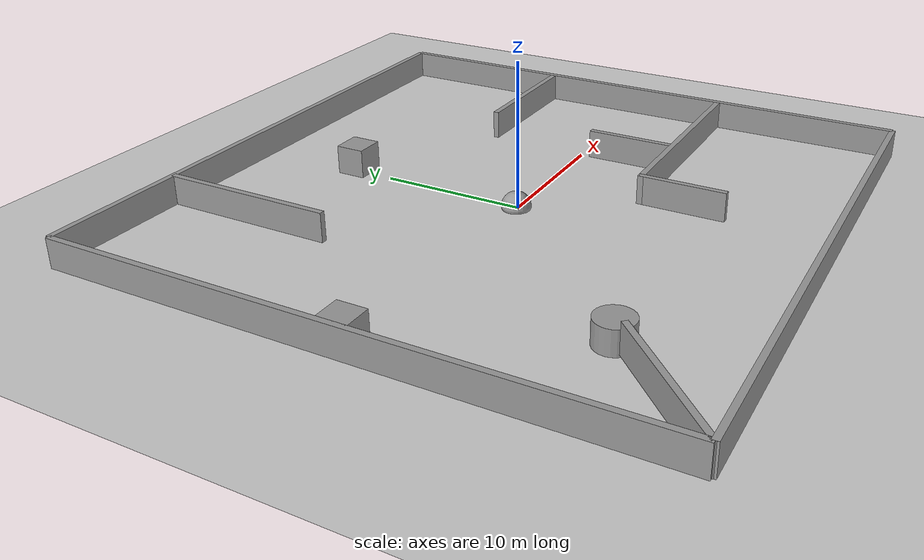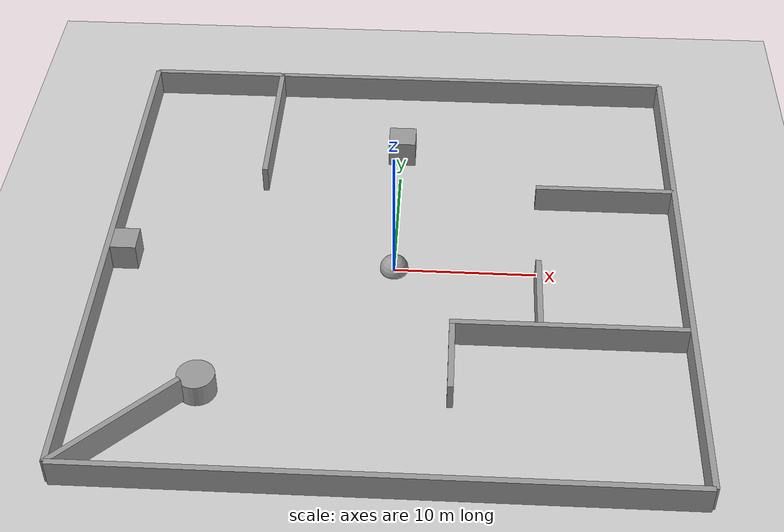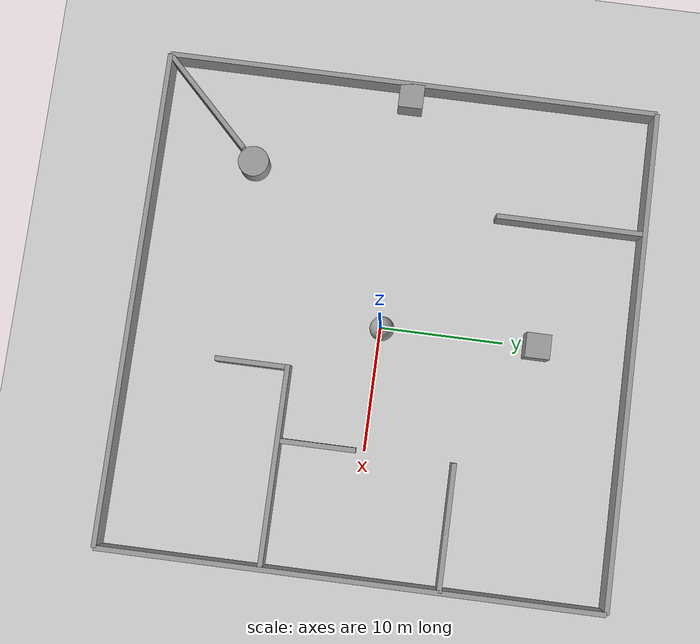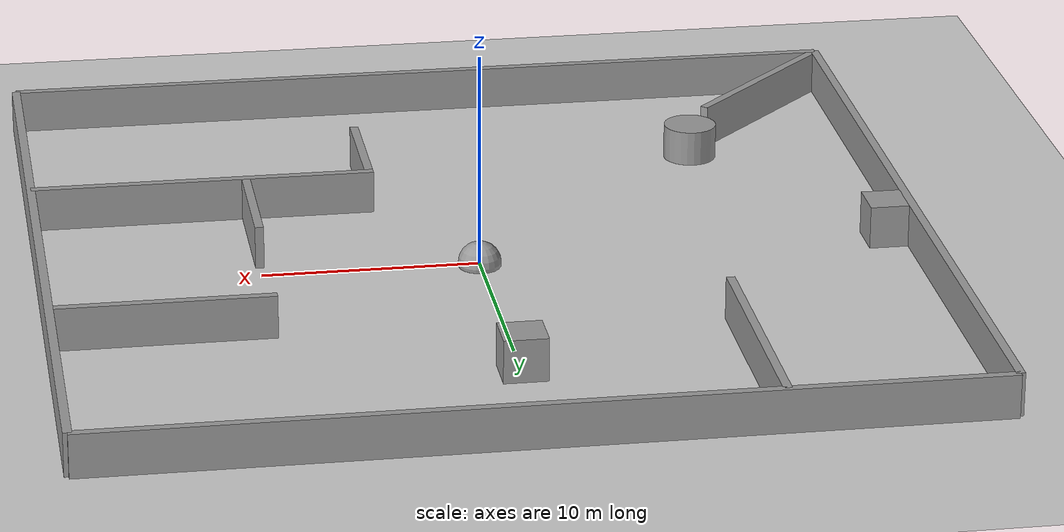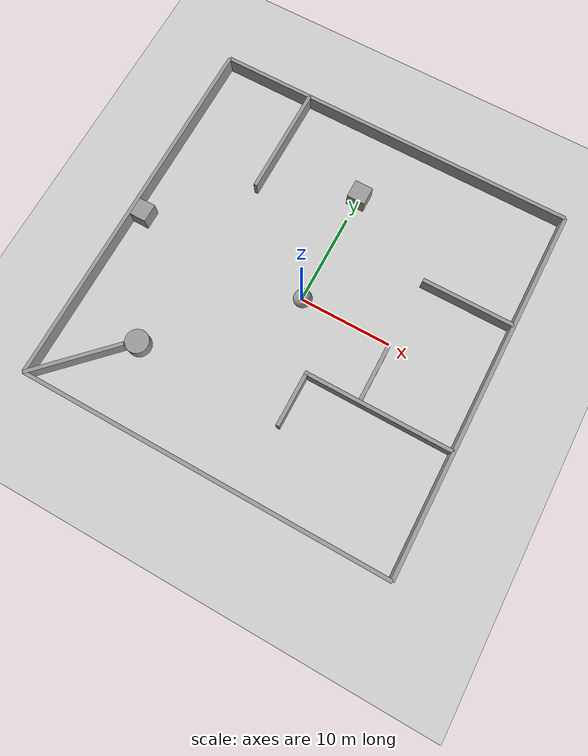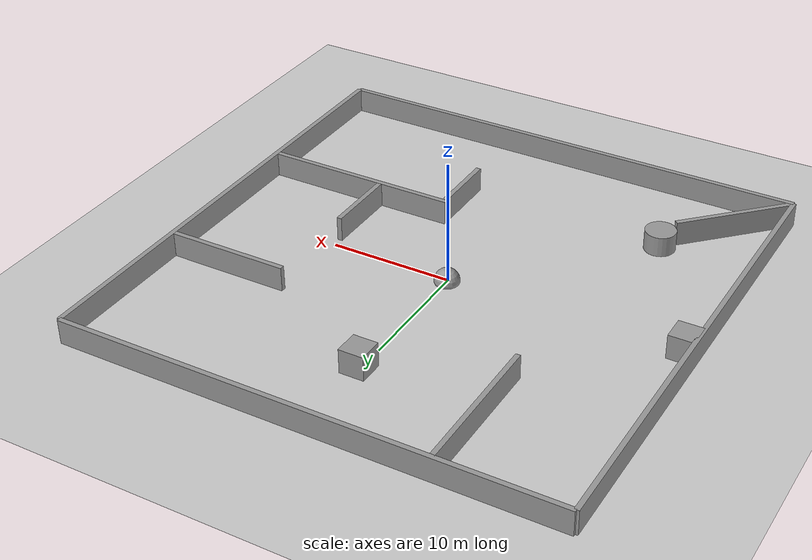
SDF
<sdf version="1.6">
 <world name="default">
  <light name="sun" type="directional">
   <pose>0 0 10 0 -0 0</pose>
   <diffuse>0.8 0.8 0.8 1</diffuse>
   <specular>0.2 0.2 0.2 1</specular>
   <attenuation>
    <range>1000</range>
    <constant>0.9</constant>
    <linear>0.01</linear>
    <quadratic>0.001</quadratic>
   </attenuation>
   <direction>-0.5 0.1 -0.9</direction>
  </light>
  <model name="ground_plane">
   <static>1</static>
   <link name="link">
    <collision name="collision">
     <geometry><plane><normal>0 0 1</normal><size>100 100</size></plane></geometry>
     <surface>
      <contact><collide_bitmask>65535</collide_bitmask></contact>
      <friction><ode><mu>100</mu><mu2>50</mu2></ode></friction>
     </surface>
    </collision>
    <visual name="visual">
     <cast_shadows>0</cast_shadows>
     <geometry><plane><normal>0 0 1</normal><size>100 100</size></plane></geometry>
     <material>
      <script><uri>file://media/materials/scripts/gazebo.material</uri><name>Gazebo/Grey</name></script>
     </material>
    </visual>
   </link>
  </model>
  <gravity>0 0 -9.8</gravity>
  <magnetic_field>6e-06 2.3e-05 -4.2e-05</magnetic_field>
  <atmosphere type="adiabatic"/>
  <physics name="default_physics" default="0" type="ode">
   <max_step_size>0.001</max_step_size>
   <real_time_factor>1</real_time_factor>
   <real_time_update_rate>1000</real_time_update_rate>
  </physics>
  <scene><ambient>0.4 0.4 0.4 1</ambient><background>0.7 0.7 0.7 1</background><shadows>1</shadows></scene>
  <spherical_coordinates>
   <surface_model>EARTH_WGS84</surface_model>
   <latitude_deg>0</latitude_deg>
   <longitude_deg>0</longitude_deg>
   <elevation>0</elevation>
   <heading_deg>0</heading_deg>
  </spherical_coordinates>
  <model name="small_environment">
   <static>1</static>
   <link name="link_0">
    <inertial>
     <mass>1</mass>
     <inertia>
      <ixx>0.166667</ixx>
      <ixy>0</ixy>
      <ixz>0</ixz>
      <iyy>0.166667</iyy>
      <iyz>0</iyz>
      <izz>0.166667</izz>
     </inertia>
    </inertial>
    <pose>2.46233 -20.6604 1.10714 0 -0 0</pose>
    <visual name="visual">
     <geometry><box><size>40 0.4 2</size></box></geometry>
     <material>
      <lighting>1</lighting>
      <script><uri>file://media/materials/scripts/gazebo.material</uri><name>Gazebo/Grey</name></script>
      <shader type="pixel"><normal_map>__default__</normal_map></shader>
      <ambient>0.3 0.3 0.3 1</ambient>
      <diffuse>0.7 0.7 0.7 1</diffuse>
      <specular>0.01 0.01 0.01 1</specular>
      <emissive>0 0 0 1</emissive>
     </material>
    </visual>
    <collision name="collision">
     <geometry><box><size>40 0.4 2</size></box></geometry>
     <surface>
      <friction>
       <ode><mu>1</mu><mu2>1</mu2><fdir1>0 0 0</fdir1><slip1>0</slip1><slip2>0</slip2></ode>
       <torsional>
        <coefficient>1</coefficient>
        <patch_radius>0</patch_radius>
        <surface_radius>0</surface_radius>
        <use_patch_radius>1</use_patch_radius>
        <ode><slip>0</slip></ode>
       </torsional>
      </friction>
      <bounce><restitution_coefficient>0</restitution_coefficient><threshold>1e+06</threshold></bounce>
      <contact>
       <collide_without_contact>0</collide_without_contact>
       <collide_without_contact_bitmask>1</collide_without_contact_bitmask>
       <collide_bitmask>1</collide_bitmask>
       <ode>
        <soft_cfm>0</soft_cfm>
        <soft_erp>0.2</soft_erp>
        <kp>1e+13</kp>
        <kd>1</kd>
        <max_vel>0.01</max_vel>
        <min_depth>0</min_depth>
       </ode>
       <bullet>
        <split_impulse>1</split_impulse>
        <split_impulse_penetration_threshold>-0.01</split_impulse_penetration_threshold>
        <soft_cfm>0</soft_cfm>
        <soft_erp>0.2</soft_erp>
        <kp>1e+13</kp>
        <kd>1</kd>
       </bullet>
      </contact>
     </surface>
    </collision>
   </link>
   <link name="link_0_clone">
    <inertial>
     <mass>1</mass>
     <inertia>
      <ixx>0.166667</ixx>
      <ixy>0</ixy>
      <ixz>0</ixz>
      <iyy>0.166667</iyy>
      <iyz>0</iyz>
      <izz>0.166667</izz>
     </inertia>
    </inertial>
    <pose>2.46233 19.3396 1.10714 0 -0 0</pose>
    <visual name="visual">
     <geometry><box><size>40 0.4 2</size></box></geometry>
     <material>
      <lighting>1</lighting>
      <script><uri>file://media/materials/scripts/gazebo.material</uri><name>Gazebo/Grey</name></script>
      <shader type="pixel"><normal_map>__default__</normal_map></shader>
      <ambient>0.3 0.3 0.3 1</ambient>
      <diffuse>0.7 0.7 0.7 1</diffuse>
      <specular>0.01 0.01 0.01 1</specular>
      <emissive>0 0 0 1</emissive>
     </material>
    </visual>
    <collision name="collision">
     <geometry><box><size>40 0.4 2</size></box></geometry>
     <surface>
      <friction>
       <ode><mu>1</mu><mu2>1</mu2><fdir1>0 0 0</fdir1><slip1>0</slip1><slip2>0</slip2></ode>
       <torsional>
        <coefficient>1</coefficient>
        <patch_radius>0</patch_radius>
        <surface_radius>0</surface_radius>
        <use_patch_radius>1</use_patch_radius>
        <ode><slip>0</slip></ode>
       </torsional>
      </friction>
      <bounce><restitution_coefficient>0</restitution_coefficient><threshold>1e+06</threshold></bounce>
      <contact>
       <collide_without_contact>0</collide_without_contact>
       <collide_without_contact_bitmask>1</collide_without_contact_bitmask>
       <collide_bitmask>1</collide_bitmask>
       <ode>
        <soft_cfm>0</soft_cfm>
        <soft_erp>0.2</soft_erp>
        <kp>1e+13</kp>
        <kd>1</kd>
        <max_vel>0.01</max_vel>
        <min_depth>0</min_depth>
       </ode>
       <bullet>
        <split_impulse>1</split_impulse>
        <split_impulse_penetration_threshold>-0.01</split_impulse_penetration_threshold>
        <soft_cfm>0</soft_cfm>
        <soft_erp>0.2</soft_erp>
        <kp>1e+13</kp>
        <kd>1</kd>
       </bullet>
      </contact>
     </surface>
    </collision>
   </link>
   <link name="link_0_clone_0">
    <inertial>
     <mass>1</mass>
     <inertia>
      <ixx>0.166667</ixx>
      <ixy>0</ixy>
      <ixz>0</ixz>
      <iyy>0.166667</iyy>
      <iyz>0</iyz>
      <izz>0.166667</izz>
     </inertia>
    </inertial>
    <pose>-17.5377 -0.660375 1.10714 0 -0 0</pose>
    <visual name="visual">
     <geometry><box><size>0.4 40 2</size></box></geometry>
     <material>
      <lighting>1</lighting>
      <script><uri>file://media/materials/scripts/gazebo.material</uri><name>Gazebo/Grey</name></script>
      <shader type="pixel"><normal_map>__default__</normal_map></shader>
      <ambient>0.3 0.3 0.3 1</ambient>
      <diffuse>0.7 0.7 0.7 1</diffuse>
      <specular>0.01 0.01 0.01 1</specular>
      <emissive>0 0 0 1</emissive>
     </material>
    </visual>
    <collision name="collision">
     <geometry><box><size>0.4 40 2</size></box></geometry>
     <surface>
      <friction>
       <ode><mu>1</mu><mu2>1</mu2><fdir1>0 0 0</fdir1><slip1>0</slip1><slip2>0</slip2></ode>
       <torsional>
        <coefficient>1</coefficient>
        <patch_radius>0</patch_radius>
        <surface_radius>0</surface_radius>
        <use_patch_radius>1</use_patch_radius>
        <ode><slip>0</slip></ode>
       </torsional>
      </friction>
      <bounce><restitution_coefficient>0</restitution_coefficient><threshold>1e+06</threshold></bounce>
      <contact>
       <collide_without_contact>0</collide_without_contact>
       <collide_without_contact_bitmask>1</collide_without_contact_bitmask>
       <collide_bitmask>1</collide_bitmask>
       <ode>
        <soft_cfm>0</soft_cfm>
        <soft_erp>0.2</soft_erp>
        <kp>1e+13</kp>
        <kd>1</kd>
        <max_vel>0.01</max_vel>
        <min_depth>0</min_depth>
       </ode>
       <bullet>
        <split_impulse>1</split_impulse>
        <split_impulse_penetration_threshold>-0.01</split_impulse_penetration_threshold>
        <soft_cfm>0</soft_cfm>
        <soft_erp>0.2</soft_erp>
        <kp>1e+13</kp>
        <kd>1</kd>
       </bullet>
      </contact>
     </surface>
    </collision>
   </link>
   <link name="link_0_clone_0_clone">
    <inertial>
     <mass>1</mass>
     <inertia>
      <ixx>0.166667</ixx>
      <ixy>0</ixy>
      <ixz>0</ixz>
      <iyy>0.166667</iyy>
      <iyz>0</iyz>
      <izz>0.166667</izz>
     </inertia>
    </inertial>
    <pose>22.4623 -0.660375 1.10714 0 -0 0</pose>
    <visual name="visual">
     <geometry><box><size>0.4 40 2</size></box></geometry>
     <material>
      <lighting>1</lighting>
      <script><uri>file://media/materials/scripts/gazebo.material</uri><name>Gazebo/Grey</name></script>
      <shader type="pixel"><normal_map>__default__</normal_map></shader>
      <ambient>0.3 0.3 0.3 1</ambient>
      <diffuse>0.7 0.7 0.7 1</diffuse>
      <specular>0.01 0.01 0.01 1</specular>
      <emissive>0 0 0 1</emissive>
     </material>
    </visual>
    <collision name="collision">
     <geometry><box><size>0.4 40 2</size></box></geometry>
     <surface>
      <friction>
       <ode><mu>1</mu><mu2>1</mu2><fdir1>0 0 0</fdir1><slip1>0</slip1><slip2>0</slip2></ode>
       <torsional>
        <coefficient>1</coefficient>
        <patch_radius>0</patch_radius>
        <surface_radius>0</surface_radius>
        <use_patch_radius>1</use_patch_radius>
        <ode><slip>0</slip></ode>
       </torsional>
      </friction>
      <bounce><restitution_coefficient>0</restitution_coefficient><threshold>1e+06</threshold></bounce>
      <contact>
       <collide_without_contact>0</collide_without_contact>
       <collide_without_contact_bitmask>1</collide_without_contact_bitmask>
       <collide_bitmask>1</collide_bitmask>
       <ode>
        <soft_cfm>0</soft_cfm>
        <soft_erp>0.2</soft_erp>
        <kp>1e+13</kp>
        <kd>1</kd>
        <max_vel>0.01</max_vel>
        <min_depth>0</min_depth>
       </ode>
       <bullet>
        <split_impulse>1</split_impulse>
        <split_impulse_penetration_threshold>-0.01</split_impulse_penetration_threshold>
        <soft_cfm>0</soft_cfm>
        <soft_erp>0.2</soft_erp>
        <kp>1e+13</kp>
        <kd>1</kd>
       </bullet>
      </contact>
     </surface>
    </collision>
   </link>
   <link name="link_0_clone_0_clone_0">
    <inertial>
     <mass>1</mass>
     <inertia>
      <ixx>0.166667</ixx>
      <ixy>0</ixy>
      <ixz>0</ixz>
      <iyy>0.166667</iyy>
      <iyz>0</iyz>
      <izz>0.166667</izz>
     </inertia>
    </inertial>
    <pose>-7.53767 13.3396 1.10714 0 -0 0</pose>
    <visual name="visual">
     <geometry><box><size>0.4 12 2</size></box></geometry>
     <material>
      <lighting>1</lighting>
      <script><uri>file://media/materials/scripts/gazebo.material</uri><name>Gazebo/Grey</name></script>
      <shader type="pixel"><normal_map>__default__</normal_map></shader>
      <ambient>0.3 0.3 0.3 1</ambient>
      <diffuse>0.7 0.7 0.7 1</diffuse>
      <specular>0.01 0.01 0.01 1</specular>
      <emissive>0 0 0 1</emissive>
     </material>
    </visual>
    <collision name="collision">
     <geometry><box><size>0.4 12 2</size></box></geometry>
     <surface>
      <friction>
       <ode><mu>1</mu><mu2>1</mu2><fdir1>0 0 0</fdir1><slip1>0</slip1><slip2>0</slip2></ode>
       <torsional>
        <coefficient>1</coefficient>
        <patch_radius>0</patch_radius>
        <surface_radius>0</surface_radius>
        <use_patch_radius>1</use_patch_radius>
        <ode><slip>0</slip></ode>
       </torsional>
      </friction>
      <bounce><restitution_coefficient>0</restitution_coefficient><threshold>1e+06</threshold></bounce>
      <contact>
       <collide_without_contact>0</collide_without_contact>
       <collide_without_contact_bitmask>1</collide_without_contact_bitmask>
       <collide_bitmask>1</collide_bitmask>
       <ode>
        <soft_cfm>0</soft_cfm>
        <soft_erp>0.2</soft_erp>
        <kp>1e+13</kp>
        <kd>1</kd>
        <max_vel>0.01</max_vel>
        <min_depth>0</min_depth>
       </ode>
       <bullet>
        <split_impulse>1</split_impulse>
        <split_impulse_penetration_threshold>-0.01</split_impulse_penetration_threshold>
        <soft_cfm>0</soft_cfm>
        <soft_erp>0.2</soft_erp>
        <kp>1e+13</kp>
        <kd>1</kd>
       </bullet>
      </contact>
     </surface>
    </collision>
   </link>
   <link name="link_0_clone_0_clone_0_clone_clone">
    <inertial>
     <mass>1</mass>
     <inertia>
      <ixx>0.166667</ixx>
      <ixy>0</ixy>
      <ixz>0</ixz>
      <iyy>0.166667</iyy>
      <iyz>0</iyz>
      <izz>0.166667</izz>
     </inertia>
    </inertial>
    <pose>6.66233 -10.4604 1.10714 0 -0 0</pose>
    <visual name="visual">
     <geometry><box><size>0.4 6 2</size></box></geometry>
     <material>
      <lighting>1</lighting>
      <script><uri>file://media/materials/scripts/gazebo.material</uri><name>Gazebo/Grey</name></script>
      <shader type="pixel"><normal_map>__default__</normal_map></shader>
      <ambient>0.3 0.3 0.3 1</ambient>
      <diffuse>0.7 0.7 0.7 1</diffuse>
      <specular>0.01 0.01 0.01 1</specular>
      <emissive>0 0 0 1</emissive>
     </material>
    </visual>
    <collision name="collision">
     <geometry><box><size>0.4 6 2</size></box></geometry>
     <surface>
      <friction>
       <ode><mu>1</mu><mu2>1</mu2><fdir1>0 0 0</fdir1><slip1>0</slip1><slip2>0</slip2></ode>
       <torsional>
        <coefficient>1</coefficient>
        <patch_radius>0</patch_radius>
        <surface_radius>0</surface_radius>
        <use_patch_radius>1</use_patch_radius>
        <ode><slip>0</slip></ode>
       </torsional>
      </friction>
      <bounce><restitution_coefficient>0</restitution_coefficient><threshold>1e+06</threshold></bounce>
      <contact>
       <collide_without_contact>0</collide_without_contact>
       <collide_without_contact_bitmask>1</collide_without_contact_bitmask>
       <collide_bitmask>1</collide_bitmask>
       <ode>
        <soft_cfm>0</soft_cfm>
        <soft_erp>0.2</soft_erp>
        <kp>1e+13</kp>
        <kd>1</kd>
        <max_vel>0.01</max_vel>
        <min_depth>0</min_depth>
       </ode>
       <bullet>
        <split_impulse>1</split_impulse>
        <split_impulse_penetration_threshold>-0.01</split_impulse_penetration_threshold>
        <soft_cfm>0</soft_cfm>
        <soft_erp>0.2</soft_erp>
        <kp>1e+13</kp>
        <kd>1</kd>
       </bullet>
      </contact>
     </surface>
    </collision>
   </link>
   <link name="link_0_clone_0_clone_0_clone_clone_clone">
    <inertial>
     <mass>1</mass>
     <inertia>
      <ixx>0.166667</ixx>
      <ixy>0</ixy>
      <ixz>0</ixz>
      <iyy>0.166667</iyy>
      <iyz>0</iyz>
      <izz>0.166667</izz>
     </inertia>
    </inertial>
    <pose>12.4623 -4.46037 1.10714 0 -0 0</pose>
    <visual name="visual">
     <geometry><box><size>0.4 6 2</size></box></geometry>
     <material>
      <lighting>1</lighting>
      <script><uri>file://media/materials/scripts/gazebo.material</uri><name>Gazebo/Grey</name></script>
      <shader type="pixel"><normal_map>__default__</normal_map></shader>
      <ambient>0.3 0.3 0.3 1</ambient>
      <diffuse>0.7 0.7 0.7 1</diffuse>
      <specular>0.01 0.01 0.01 1</specular>
      <emissive>0 0 0 1</emissive>
     </material>
    </visual>
    <collision name="collision">
     <geometry><box><size>0.4 6 2</size></box></geometry>
     <surface>
      <friction>
       <ode><mu>1</mu><mu2>1</mu2><fdir1>0 0 0</fdir1><slip1>0</slip1><slip2>0</slip2></ode>
       <torsional>
        <coefficient>1</coefficient>
        <patch_radius>0</patch_radius>
        <surface_radius>0</surface_radius>
        <use_patch_radius>1</use_patch_radius>
        <ode><slip>0</slip></ode>
       </torsional>
      </friction>
      <bounce><restitution_coefficient>0</restitution_coefficient><threshold>1e+06</threshold></bounce>
      <contact>
       <collide_without_contact>0</collide_without_contact>
       <collide_without_contact_bitmask>1</collide_without_contact_bitmask>
       <collide_bitmask>1</collide_bitmask>
       <ode>
        <soft_cfm>0</soft_cfm>
        <soft_erp>0.2</soft_erp>
        <kp>1e+13</kp>
        <kd>1</kd>
        <max_vel>0.01</max_vel>
        <min_depth>0</min_depth>
       </ode>
       <bullet>
        <split_impulse>1</split_impulse>
        <split_impulse_penetration_threshold>-0.01</split_impulse_penetration_threshold>
        <soft_cfm>0</soft_cfm>
        <soft_erp>0.2</soft_erp>
        <kp>1e+13</kp>
        <kd>1</kd>
       </bullet>
      </contact>
     </surface>
    </collision>
   </link>
   <link name="link_0_clone_1">
    <inertial>
     <mass>1</mass>
     <inertia>
      <ixx>0.166667</ixx>
      <ixy>0</ixy>
      <ixz>0</ixz>
      <iyy>0.166667</iyy>
      <iyz>0</iyz>
      <izz>0.166667</izz>
     </inertia>
    </inertial>
    <pose>-14.0377 -17.1604 1.10714 0 -0 0</pose>
    <visual name="visual">
     <pose>0 0 0 0 -0 0.785398</pose>
     <geometry><box><size>10 0.4 2</size></box></geometry>
     <material>
      <lighting>1</lighting>
      <script><uri>file://media/materials/scripts/gazebo.material</uri><name>Gazebo/Grey</name></script>
      <shader type="pixel"><normal_map>__default__</normal_map></shader>
      <ambient>0.3 0.3 0.3 1</ambient>
      <diffuse>0.7 0.7 0.7 1</diffuse>
      <specular>0.01 0.01 0.01 1</specular>
      <emissive>0 0 0 1</emissive>
     </material>
    </visual>
    <collision name="collision">
     <pose>0 0 0 0 -0 0.785398</pose>
     <geometry><box><size>10 0.4 2</size></box></geometry>
     <surface>
      <friction>
       <ode><mu>1</mu><mu2>1</mu2><fdir1>0 0 0</fdir1><slip1>0</slip1><slip2>0</slip2></ode>
       <torsional>
        <coefficient>1</coefficient>
        <patch_radius>0</patch_radius>
        <surface_radius>0</surface_radius>
        <use_patch_radius>1</use_patch_radius>
        <ode><slip>0</slip></ode>
       </torsional>
      </friction>
      <bounce><restitution_coefficient>0</restitution_coefficient><threshold>1e+06</threshold></bounce>
      <contact>
       <collide_without_contact>0</collide_without_contact>
       <collide_without_contact_bitmask>1</collide_without_contact_bitmask>
       <collide_bitmask>1</collide_bitmask>
       <ode>
        <soft_cfm>0</soft_cfm>
        <soft_erp>0.2</soft_erp>
        <kp>1e+13</kp>
        <kd>1</kd>
        <max_vel>0.01</max_vel>
        <min_depth>0</min_depth>
       </ode>
       <bullet>
        <split_impulse>1</split_impulse>
        <split_impulse_penetration_threshold>-0.01</split_impulse_penetration_threshold>
        <soft_cfm>0</soft_cfm>
        <soft_erp>0.2</soft_erp>
        <kp>1e+13</kp>
        <kd>1</kd>
       </bullet>
      </contact>
     </surface>
    </collision>
   </link>
   <link name="link_0_clone_clone">
    <inertial>
     <mass>1</mass>
     <inertia>
      <ixx>0.166667</ixx>
      <ixy>0</ixy>
      <ixz>0</ixz>
      <iyy>0.166667</iyy>
      <iyz>0</iyz>
      <izz>0.166667</izz>
     </inertia>
    </inertial>
    <pose>17.4623 6.33962 1.10714 0 -0 0</pose>
    <visual name="visual">
     <geometry><box><size>10 0.4 2</size></box></geometry>
     <material>
      <lighting>1</lighting>
      <script><uri>file://media/materials/scripts/gazebo.material</uri><name>Gazebo/Grey</name></script>
      <shader type="pixel"><normal_map>__default__</normal_map></shader>
      <ambient>0.3 0.3 0.3 1</ambient>
      <diffuse>0.7 0.7 0.7 1</diffuse>
      <specular>0.01 0.01 0.01 1</specular>
      <emissive>0 0 0 1</emissive>
     </material>
    </visual>
    <collision name="collision">
     <geometry><box><size>10 0.4 2</size></box></geometry>
     <surface>
      <friction>
       <ode><mu>1</mu><mu2>1</mu2><fdir1>0 0 0</fdir1><slip1>0</slip1><slip2>0</slip2></ode>
       <torsional>
        <coefficient>1</coefficient>
        <patch_radius>0</patch_radius>
        <surface_radius>0</surface_radius>
        <use_patch_radius>1</use_patch_radius>
        <ode><slip>0</slip></ode>
       </torsional>
      </friction>
      <bounce><restitution_coefficient>0</restitution_coefficient><threshold>1e+06</threshold></bounce>
      <contact>
       <collide_without_contact>0</collide_without_contact>
       <collide_without_contact_bitmask>1</collide_without_contact_bitmask>
       <collide_bitmask>1</collide_bitmask>
       <ode>
        <soft_cfm>0</soft_cfm>
        <soft_erp>0.2</soft_erp>
        <kp>1e+13</kp>
        <kd>1</kd>
        <max_vel>0.01</max_vel>
        <min_depth>0</min_depth>
       </ode>
       <bullet>
        <split_impulse>1</split_impulse>
        <split_impulse_penetration_threshold>-0.01</split_impulse_penetration_threshold>
        <soft_cfm>0</soft_cfm>
        <soft_erp>0.2</soft_erp>
        <kp>1e+13</kp>
        <kd>1</kd>
       </bullet>
      </contact>
     </surface>
    </collision>
   </link>
   <link name="link_0_clone_clone_clone">
    <inertial>
     <mass>1</mass>
     <inertia>
      <ixx>0.166667</ixx>
      <ixy>0</ixy>
      <ixz>0</ixz>
      <iyy>0.166667</iyy>
      <iyz>0</iyz>
      <izz>0.166667</izz>
     </inertia>
    </inertial>
    <pose>14.4623 -7.66038 1.10714 0 -0 0</pose>
    <visual name="visual">
     <geometry><box><size>16 0.4 2</size></box></geometry>
     <material>
      <lighting>1</lighting>
      <script><uri>file://media/materials/scripts/gazebo.material</uri><name>Gazebo/Grey</name></script>
      <shader type="pixel"><normal_map>__default__</normal_map></shader>
      <ambient>0.3 0.3 0.3 1</ambient>
      <diffuse>0.7 0.7 0.7 1</diffuse>
      <specular>0.01 0.01 0.01 1</specular>
      <emissive>0 0 0 1</emissive>
     </material>
    </visual>
    <collision name="collision">
     <geometry><box><size>16 0.4 2</size></box></geometry>
     <surface>
      <friction>
       <ode><mu>1</mu><mu2>1</mu2><fdir1>0 0 0</fdir1><slip1>0</slip1><slip2>0</slip2></ode>
       <torsional>
        <coefficient>1</coefficient>
        <patch_radius>0</patch_radius>
        <surface_radius>0</surface_radius>
        <use_patch_radius>1</use_patch_radius>
        <ode><slip>0</slip></ode>
       </torsional>
      </friction>
      <bounce><restitution_coefficient>0</restitution_coefficient><threshold>1e+06</threshold></bounce>
      <contact>
       <collide_without_contact>0</collide_without_contact>
       <collide_without_contact_bitmask>1</collide_without_contact_bitmask>
       <collide_bitmask>1</collide_bitmask>
       <ode>
        <soft_cfm>0</soft_cfm>
        <soft_erp>0.2</soft_erp>
        <kp>1e+13</kp>
        <kd>1</kd>
        <max_vel>0.01</max_vel>
        <min_depth>0</min_depth>
       </ode>
       <bullet>
        <split_impulse>1</split_impulse>
        <split_impulse_penetration_threshold>-0.01</split_impulse_penetration_threshold>
        <soft_cfm>0</soft_cfm>
        <soft_erp>0.2</soft_erp>
        <kp>1e+13</kp>
        <kd>1</kd>
       </bullet>
      </contact>
     </surface>
    </collision>
   </link>
   <link name="link_1">
    <inertial>
     <mass>1</mass>
     <inertia>
      <ixx>0.166667</ixx>
      <ixy>0</ixy>
      <ixz>0</ixz>
      <iyy>0.166667</iyy>
      <iyz>0</iyz>
      <izz>0.166667</izz>
     </inertia>
    </inertial>
    <pose>-16.5377 -0.660375 1.10714 0 -0 0</pose>
    <visual name="visual">
     <geometry><box><size>2 2 2</size></box></geometry>
     <material>
      <lighting>1</lighting>
      <script><uri>file://media/materials/scripts/gazebo.material</uri><name>Gazebo/Grey</name></script>
      <shader type="pixel"><normal_map>__default__</normal_map></shader>
      <ambient>0.3 0.3 0.3 1</ambient>
      <diffuse>0.7 0.7 0.7 1</diffuse>
      <specular>0.01 0.01 0.01 1</specular>
      <emissive>0 0 0 1</emissive>
     </material>
    </visual>
    <collision name="collision">
     <geometry><box><size>2 2 2</size></box></geometry>
     <surface>
      <friction>
       <ode><mu>1</mu><mu2>1</mu2><fdir1>0 0 0</fdir1><slip1>0</slip1><slip2>0</slip2></ode>
       <torsional>
        <coefficient>1</coefficient>
        <patch_radius>0</patch_radius>
        <surface_radius>0</surface_radius>
        <use_patch_radius>1</use_patch_radius>
        <ode><slip>0</slip></ode>
       </torsional>
      </friction>
      <bounce><restitution_coefficient>0</restitution_coefficient><threshold>1e+06</threshold></bounce>
      <contact>
       <collide_without_contact>0</collide_without_contact>
       <collide_without_contact_bitmask>1</collide_without_contact_bitmask>
       <collide_bitmask>1</collide_bitmask>
       <ode>
        <soft_cfm>0</soft_cfm>
        <soft_erp>0.2</soft_erp>
        <kp>1e+13</kp>
        <kd>1</kd>
        <max_vel>0.01</max_vel>
        <min_depth>0</min_depth>
       </ode>
       <bullet>
        <split_impulse>1</split_impulse>
        <split_impulse_penetration_threshold>-0.01</split_impulse_penetration_threshold>
        <soft_cfm>0</soft_cfm>
        <soft_erp>0.2</soft_erp>
        <kp>1e+13</kp>
        <kd>1</kd>
       </bullet>
      </contact>
     </surface>
    </collision>
   </link>
   <link name="link_1_clone">
    <inertial>
     <mass>1</mass>
     <inertia>
      <ixx>0.166667</ixx>
      <ixy>0</ixy>
      <ixz>0</ixz>
      <iyy>0.166667</iyy>
      <iyz>0</iyz>
      <izz>0.166667</izz>
     </inertia>
    </inertial>
    <pose>2.46233 11.8396 1.10714 0 -0 0</pose>
    <visual name="visual">
     <geometry><box><size>2 2 2</size></box></geometry>
     <material>
      <lighting>1</lighting>
      <script><uri>file://media/materials/scripts/gazebo.material</uri><name>Gazebo/Grey</name></script>
      <shader type="pixel"><normal_map>__default__</normal_map></shader>
      <ambient>0.3 0.3 0.3 1</ambient>
      <diffuse>0.7 0.7 0.7 1</diffuse>
      <specular>0.01 0.01 0.01 1</specular>
      <emissive>0 0 0 1</emissive>
     </material>
    </visual>
    <collision name="collision">
     <geometry><box><size>2 2 2</size></box></geometry>
     <surface>
      <friction>
       <ode><mu>1</mu><mu2>1</mu2><fdir1>0 0 0</fdir1><slip1>0</slip1><slip2>0</slip2></ode>
       <torsional>
        <coefficient>1</coefficient>
        <patch_radius>0</patch_radius>
        <surface_radius>0</surface_radius>
        <use_patch_radius>1</use_patch_radius>
        <ode><slip>0</slip></ode>
       </torsional>
      </friction>
      <bounce><restitution_coefficient>0</restitution_coefficient><threshold>1e+06</threshold></bounce>
      <contact>
       <collide_without_contact>0</collide_without_contact>
       <collide_without_contact_bitmask>1</collide_without_contact_bitmask>
       <collide_bitmask>1</collide_bitmask>
       <ode>
        <soft_cfm>0</soft_cfm>
        <soft_erp>0.2</soft_erp>
        <kp>1e+13</kp>
        <kd>1</kd>
        <max_vel>0.01</max_vel>
        <min_depth>0</min_depth>
       </ode>
       <bullet>
        <split_impulse>1</split_impulse>
        <split_impulse_penetration_threshold>-0.01</split_impulse_penetration_threshold>
        <soft_cfm>0</soft_cfm>
        <soft_erp>0.2</soft_erp>
        <kp>1e+13</kp>
        <kd>1</kd>
       </bullet>
      </contact>
     </surface>
    </collision>
   </link>
   <link name="link_4">
    <inertial>
     <mass>1</mass>
     <inertia><ixx>0.1</ixx><ixy>0</ixy><ixz>0</ixz><iyy>0.1</iyy><iyz>0</iyz><izz>0.1</izz></inertia>
    </inertial>
    <pose>2.46233 -0.660375 0.107143 0 -0 0</pose>
    <visual name="visual">
     <geometry><sphere><radius>1</radius></sphere></geometry>
     <material>
      <lighting>1</lighting>
      <script><uri>file://media/materials/scripts/gazebo.material</uri><name>Gazebo/Grey</name></script>
      <shader type="pixel"><normal_map>__default__</normal_map></shader>
      <ambient>0.3 0.3 0.3 1</ambient>
      <diffuse>0.7 0.7 0.7 1</diffuse>
      <specular>0.01 0.01 0.01 1</specular>
      <emissive>0 0 0 1</emissive>
     </material>
    </visual>
    <collision name="collision">
     <geometry><sphere><radius>1</radius></sphere></geometry>
     <surface>
      <friction>
       <ode><mu>1</mu><mu2>1</mu2><fdir1>0 0 0</fdir1><slip1>0</slip1><slip2>0</slip2></ode>
       <torsional>
        <coefficient>1</coefficient>
        <patch_radius>0</patch_radius>
        <surface_radius>0</surface_radius>
        <use_patch_radius>1</use_patch_radius>
        <ode><slip>0</slip></ode>
       </torsional>
      </friction>
      <bounce><restitution_coefficient>0</restitution_coefficient><threshold>1e+06</threshold></bounce>
      <contact>
       <collide_without_contact>0</collide_without_contact>
       <collide_without_contact_bitmask>1</collide_without_contact_bitmask>
       <collide_bitmask>1</collide_bitmask>
       <ode>
        <soft_cfm>0</soft_cfm>
        <soft_erp>0.2</soft_erp>
        <kp>1e+13</kp>
        <kd>1</kd>
        <max_vel>0.01</max_vel>
        <min_depth>0</min_depth>
       </ode>
       <bullet>
        <split_impulse>1</split_impulse>
        <split_impulse_penetration_threshold>-0.01</split_impulse_penetration_threshold>
        <soft_cfm>0</soft_cfm>
        <soft_erp>0.2</soft_erp>
        <kp>1e+13</kp>
        <kd>1</kd>
       </bullet>
      </contact>
     </surface>
    </collision>
   </link>
   <link name="link_5">
    <inertial>
     <mass>1</mass>
     <inertia><ixx>0.145833</ixx><ixy>0</ixy><ixz>0</ixz><iyy>0.145833</iyy><iyz>0</iyz><izz>0.125</izz></inertia>
    </inertial>
    <pose>-9.63767 -12.7604 0.607143 0 -0 0</pose>
    <visual name="visual">
     <geometry><cylinder><radius>1.25</radius><length>2</length></cylinder></geometry>
     <material>
      <lighting>1</lighting>
      <script><uri>file://media/materials/scripts/gazebo.material</uri><name>Gazebo/Grey</name></script>
      <shader type="pixel"><normal_map>__default__</normal_map></shader>
      <ambient>0.3 0.3 0.3 1</ambient>
      <diffuse>0.7 0.7 0.7 1</diffuse>
      <specular>0.01 0.01 0.01 1</specular>
      <emissive>0 0 0 1</emissive>
     </material>
    </visual>
    <collision name="collision">
     <geometry><cylinder><radius>1.25</radius><length>2</length></cylinder></geometry>
     <surface>
      <friction>
       <ode><mu>1</mu><mu2>1</mu2><fdir1>0 0 0</fdir1><slip1>0</slip1><slip2>0</slip2></ode>
       <torsional>
        <coefficient>1</coefficient>
        <patch_radius>0</patch_radius>
        <surface_radius>0</surface_radius>
        <use_patch_radius>1</use_patch_radius>
        <ode><slip>0</slip></ode>
       </torsional>
      </friction>
      <bounce><restitution_coefficient>0</restitution_coefficient><threshold>1e+06</threshold></bounce>
      <contact>
       <collide_without_contact>0</collide_without_contact>
       <collide_without_contact_bitmask>1</collide_without_contact_bitmask>
       <collide_bitmask>1</collide_bitmask>
       <ode>
        <soft_cfm>0</soft_cfm>
        <soft_erp>0.2</soft_erp>
        <kp>1e+13</kp>
        <kd>1</kd>
        <max_vel>0.01</max_vel>
        <min_depth>0</min_depth>
       </ode>
       <bullet>
        <split_impulse>1</split_impulse>
        <split_impulse_penetration_threshold>-0.01</split_impulse_penetration_threshold>
        <soft_cfm>0</soft_cfm>
        <soft_erp>0.2</soft_erp>
        <kp>1e+13</kp>
        <kd>1</kd>
       </bullet>
      </contact>
     </surface>
    </collision>
   </link>
   <static>0</static>
   <pose>-2.43949 0.7941 0 0 -0 0</pose>
  </model>
 </world>
</sdf>
